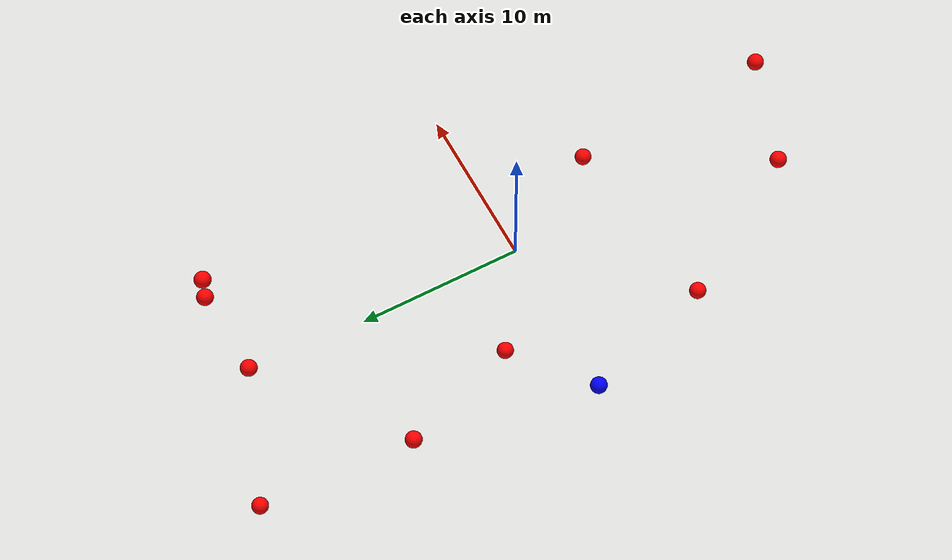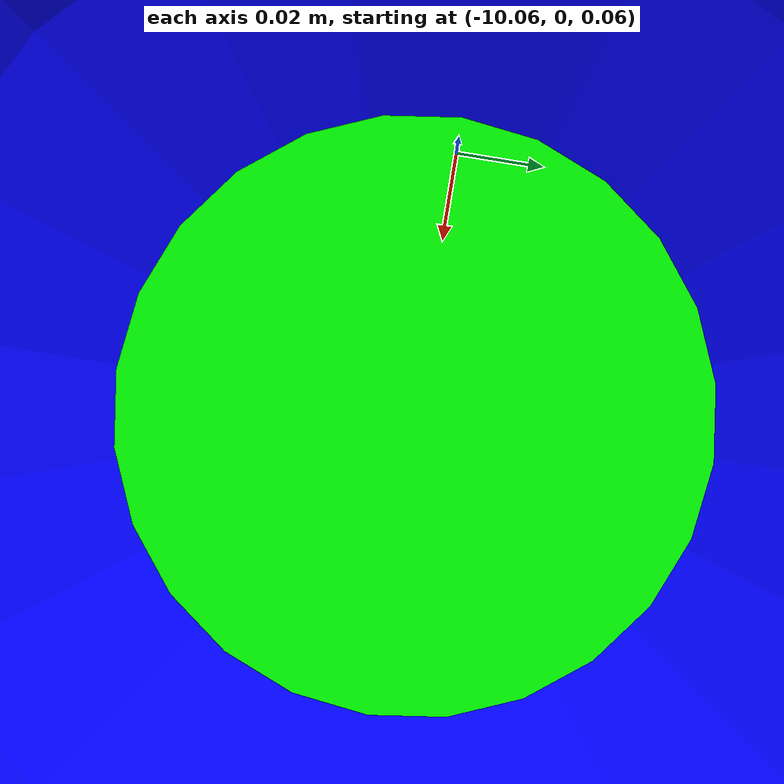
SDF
<?xml version="1.0" ?>
<sdf version="1.8">
    <world name="3d_world">
        <physics name="1ms" type="ode">
            <max_step_size>0.001</max_step_size>
            <real_time_factor>1.0</real_time_factor>
            <real_time_update_rate>1000.0</real_time_update_rate>
        </physics>
        <gravity>0 0 0</gravity>

        <plugin
            filename="gz-sim-physics-system"
            name="gz::sim::v8::systems::Physics">
        </plugin>
        <plugin
            filename="libignition-gazebo-user-commands-system.so"
            name="ignition::gazebo::systems::UserCommands">
        </plugin>
        <plugin
            filename="gz-sim-scene-broadcaster-system"
            name="gz::sim::systems::SceneBroadcaster">
        </plugin>
        <plugin
            filename="gz-sim-sensors-system"
            name="gz::sim::systems::Sensors">
            <render_engine>ogre2</render_engine>
        </plugin>

        <light type="directional" name="sun">
            <cast_shadows>true</cast_shadows>
            <pose>0 0 10 0 0 0</pose>
            <diffuse>0.8 0.8 0.8 1</diffuse>
            <specular>0.2 0.2 0.2 1</specular>
            <attenuation>
                <range>1000</range>
                <constant>0.9</constant>
                <linear>0.01</linear>
                <quadratic>0.001</quadratic>
            </attenuation>
            <direction>-0.5 0.1 -0.9</direction>
        </light>

        <!-- AGENTE -->
        <model name='agente' canonical_link='chassis'>
            <pose relative_to='world'>-10.0 0 0.0 0 0 0</pose>
            <link name='chassis'>
                <pose relative_to='__model__'>0.0 0 0.0 0 0 0</pose>
                <inertial>
                    <mass>1.14395</mass>
                    <inertia>
                        <ixx>0.095329</ixx>
                        <ixy>0</ixy>
                        <ixz>0</ixz>
                        <iyy>0.381317</iyy>
                        <iyz>0</iyz>
                        <izz>0.476646</izz>
                    </inertia>
                </inertial>
                <visual name='visual'>
                    <geometry>
                        <sphere>
                            <radius>0.5</radius>
                        </sphere>
                    </geometry>
                    <material>
                        <ambient>0.0 0.0 1.0 1</ambient>
                        <diffuse>0.0 0.0 1.0 1</diffuse>
                        <specular>0.0 0.0 1.0 1</specular>
                    </material>
                </visual>
                <collision name='collision'>
                    <geometry>
                        <sphere>
                            <radius>0.5</radius>
                        </sphere>
                    </geometry>
                </collision>
                <enable_gravity>false</enable_gravity>
            </link>

            <link name='lidar_link'>
                <pose relative_to='chassis'>0.0 0 0.1 0 0 0</pose>
                <inertial>
                    <mass>0.1</mass>
                    <inertia>
                        <ixx>0.000166667</ixx>
                        <iyy>0.000166667</iyy>
                        <izz>0.000166667</izz>
                    </inertia>
                </inertial>
                <collision name='collision'>
                    <geometry>
                        <cylinder>
                            <radius>0.05</radius>
                            <length>0.1</length>
                        </cylinder>
                    </geometry>
                </collision>
                <visual name='visual'>
                    <geometry>
                        <cylinder>
                            <radius>0.05</radius>
                            <length>0.1</length>
                        </cylinder>
                    </geometry>
                    <material>
                        <ambient>0.0 1.0 0.0 1</ambient>
                        <diffuse>0.0 1.0 0.0 1</diffuse>
                        <specular>0.0 1.0 0.0 1</specular>
                    </material>
                </visual>
                <sensor name="lidar" type="gpu_lidar">
                    <topic>scan</topic>
                    <update_rate>10</update_rate>
                    <lidar>
                        <scan>
                            <horizontal>
                                <samples>5000</samples>
                                <resolution>1</resolution>
                                <min_angle>-3.14159</min_angle>
                                <max_angle>3.14159</max_angle>
                            </horizontal>
                        </scan>
                        <range>
                            <min>0.1</min>
                            <max>10.0</max>
                            <resolution>0.01</resolution>
                        </range>
                    </lidar>
                    <visualize>true</visualize>
                    <always_on>true</always_on>
                    <update_rate>10</update_rate>
                    <pose_frame>lidar</pose_frame>
                </sensor>
                <enable_gravity>false</enable_gravity>
            </link>

            <joint name="lidar_joint" type="fixed">
                <parent>chassis</parent>
                <child>lidar_link</child>
            </joint>

            <plugin
                filename="ignition-gazebo-joint-state-publisher-system"
                name="ignition::gazebo::systems::JointStatePublisher">
            </plugin>
            <plugin
                filename="ignition-gazebo-odometry-publisher-system"
                name="ignition::gazebo::systems::OdometryPublisher">
                <dimensions>3</dimensions>
            </plugin>
            <plugin
                filename="ignition-gazebo-velocity-control-system"
                name="ignition::gazebo::systems::VelocityControl">
                <initial_linear>0.0 0 0</initial_linear>
                <initial_angular>0 0 0.0</initial_angular>
            </plugin>
            <plugin
                filename="libignition-gazebo-pose-publisher-system.so"
                name="ignition::gazebo::systems::PosePublisher">
                <topic>/agente/pose</topic>
                <frame_id>agente</frame_id>
                <update_rate>30</update_rate>
            </plugin>
        </model>

        <!-- OBSTACLE 1 -->
        <model name='obstacle_1' canonical_link='obstacle'>
            <static>false</static>
            <pose relative_to='world'>-6.69 -8.58 -1.42 0 0 0</pose>
            <link name='obstacle'>
                <pose relative_to='__model__'>0.0 0 0.0 0 0 0</pose>
                <visual name='visual'>
                    <geometry>
                        <sphere>
                            <radius>0.50</radius>
                        </sphere>
                    </geometry>
                    <material>
                        <ambient>1.0 0.0 0.0 1</ambient>
                        <diffuse>1.0 0.0 0.0 1</diffuse>
                        <specular>1.0 0.0 0.0 1</specular>
                    </material>
                </visual>
                <collision name='collision'>
                    <geometry>
                        <sphere>
                            <radius>0.50</radius>
                        </sphere>
                    </geometry>
                </collision>
                <enable_gravity>false</enable_gravity>
            </link>

            <plugin
                filename="ignition-gazebo-velocity-control-system"
                name="ignition::gazebo::systems::VelocityControl">
                <initial_linear>1.60 1.18 0.20</initial_linear>
                <initial_angular>0 0 0</initial_angular>
            </plugin>

            <plugin
                filename="ignition-gazebo-odometry-publisher-system"
                name="ignition::gazebo::systems::OdometryPublisher">
                <dimensions>3</dimensions>
            </plugin>
        </model>

        <!-- OBSTACLE 2 -->
        <model name='obstacle_2' canonical_link='obstacle'>
            <static>false</static>
            <pose relative_to='world'>-4.15 2.91 -2.93 0 0 0</pose>
            <link name='obstacle'>
                <pose relative_to='__model__'>0.0 0 0.0 0 0 0</pose>
                <visual name='visual'>
                    <geometry>
                        <sphere>
                            <radius>0.50</radius>
                        </sphere>
                    </geometry>
                    <material>
                        <ambient>1.0 0.0 0.0 1</ambient>
                        <diffuse>1.0 0.0 0.0 1</diffuse>
                        <specular>1.0 0.0 0.0 1</specular>
                    </material>
                </visual>
                <collision name='collision'>
                    <geometry>
                        <sphere>
                            <radius>0.50</radius>
                        </sphere>
                    </geometry>
                </collision>
                <enable_gravity>false</enable_gravity>
            </link>

            <plugin
                filename="ignition-gazebo-velocity-control-system"
                name="ignition::gazebo::systems::VelocityControl">
                <initial_linear>1.33 -0.58 0.58</initial_linear>
                <initial_angular>0 0 0</initial_angular>
            </plugin>

            <plugin
                filename="ignition-gazebo-odometry-publisher-system"
                name="ignition::gazebo::systems::OdometryPublisher">
                <dimensions>3</dimensions>
            </plugin>
        </model>

        <!-- OBSTACLE 3 -->
        <model name='obstacle_3' canonical_link='obstacle'>
            <static>false</static>
            <pose relative_to='world'>-0.50 17.43 1.88 0 0 0</pose>
            <link name='obstacle'>
                <pose relative_to='__model__'>0.0 0 0.0 0 0 0</pose>
                <visual name='visual'>
                    <geometry>
                        <sphere>
                            <radius>0.50</radius>
                        </sphere>
                    </geometry>
                    <material>
                        <ambient>1.0 0.0 0.0 1</ambient>
                        <diffuse>1.0 0.0 0.0 1</diffuse>
                        <specular>1.0 0.0 0.0 1</specular>
                    </material>
                </visual>
                <collision name='collision'>
                    <geometry>
                        <sphere>
                            <radius>0.50</radius>
                        </sphere>
                    </geometry>
                </collision>
                <enable_gravity>false</enable_gravity>
            </link>

            <plugin
                filename="ignition-gazebo-velocity-control-system"
                name="ignition::gazebo::systems::VelocityControl">
                <initial_linear>0.23 -1.98 -0.21</initial_linear>
                <initial_angular>0 0 0</initial_angular>
            </plugin>

            <plugin
                filename="ignition-gazebo-odometry-publisher-system"
                name="ignition::gazebo::systems::OdometryPublisher">
                <dimensions>3</dimensions>
            </plugin>
        </model>

        <!-- OBSTACLE 4 -->
        <model name='obstacle_4' canonical_link='obstacle'>
            <static>false</static>
            <pose relative_to='world'>-8.68 11.18 1.41 0 0 0</pose>
            <link name='obstacle'>
                <pose relative_to='__model__'>0.0 0 0.0 0 0 0</pose>
                <visual name='visual'>
                    <geometry>
                        <sphere>
                            <radius>0.50</radius>
                        </sphere>
                    </geometry>
                    <material>
                        <ambient>1.0 0.0 0.0 1</ambient>
                        <diffuse>1.0 0.0 0.0 1</diffuse>
                        <specular>1.0 0.0 0.0 1</specular>
                    </material>
                </visual>
                <collision name='collision'>
                    <geometry>
                        <sphere>
                            <radius>0.50</radius>
                        </sphere>
                    </geometry>
                </collision>
                <enable_gravity>false</enable_gravity>
            </link>

            <plugin
                filename="ignition-gazebo-velocity-control-system"
                name="ignition::gazebo::systems::VelocityControl">
                <initial_linear>1.53 -1.28 -0.16</initial_linear>
                <initial_angular>0 0 0</initial_angular>
            </plugin>

            <plugin
                filename="ignition-gazebo-odometry-publisher-system"
                name="ignition::gazebo::systems::OdometryPublisher">
                <dimensions>3</dimensions>
            </plugin>
        </model>

        <!-- OBSTACLE 5 -->
        <model name='obstacle_5' canonical_link='obstacle'>
            <static>false</static>
            <pose relative_to='world'>4.22 17.83 2.95 0 0 0</pose>
            <link name='obstacle'>
                <pose relative_to='__model__'>0.0 0 0.0 0 0 0</pose>
                <visual name='visual'>
                    <geometry>
                        <sphere>
                            <radius>0.50</radius>
                        </sphere>
                    </geometry>
                    <material>
                        <ambient>1.0 0.0 0.0 1</ambient>
                        <diffuse>1.0 0.0 0.0 1</diffuse>
                        <specular>1.0 0.0 0.0 1</specular>
                    </material>
                </visual>
                <collision name='collision'>
                    <geometry>
                        <sphere>
                            <radius>0.50</radius>
                        </sphere>
                    </geometry>
                </collision>
                <enable_gravity>false</enable_gravity>
            </link>

            <plugin
                filename="ignition-gazebo-velocity-control-system"
                name="ignition::gazebo::systems::VelocityControl">
                <initial_linear>-0.48 -1.91 -0.32</initial_linear>
                <initial_angular>0 0 0</initial_angular>
            </plugin>

            <plugin
                filename="ignition-gazebo-odometry-publisher-system"
                name="ignition::gazebo::systems::OdometryPublisher">
                <dimensions>3</dimensions>
            </plugin>
        </model>

        <!-- OBSTACLE 6 -->
        <model name='obstacle_6' canonical_link='obstacle'>
            <static>false</static>
            <pose relative_to='world'>4.37 -7.00 -1.01 0 0 0</pose>
            <link name='obstacle'>
                <pose relative_to='__model__'>0.0 0 0.0 0 0 0</pose>
                <visual name='visual'>
                    <geometry>
                        <sphere>
                            <radius>0.50</radius>
                        </sphere>
                    </geometry>
                    <material>
                        <ambient>1.0 0.0 0.0 1</ambient>
                        <diffuse>1.0 0.0 0.0 1</diffuse>
                        <specular>1.0 0.0 0.0 1</specular>
                    </material>
                </visual>
                <collision name='collision'>
                    <geometry>
                        <sphere>
                            <radius>0.50</radius>
                        </sphere>
                    </geometry>
                </collision>
                <enable_gravity>false</enable_gravity>
            </link>

            <plugin
                filename="ignition-gazebo-velocity-control-system"
                name="ignition::gazebo::systems::VelocityControl">
                <initial_linear>-1.50 1.31 0.19</initial_linear>
                <initial_angular>0 0 0</initial_angular>
            </plugin>

            <plugin
                filename="ignition-gazebo-odometry-publisher-system"
                name="ignition::gazebo::systems::OdometryPublisher">
                <dimensions>3</dimensions>
            </plugin>
        </model>

        <!-- OBSTACLE 7 -->
        <model name='obstacle_7' canonical_link='obstacle'>
            <static>false</static>
            <pose relative_to='world'>4.22 17.77 4.94 0 0 0</pose>
            <link name='obstacle'>
                <pose relative_to='__model__'>0.0 0 0.0 0 0 0</pose>
                <visual name='visual'>
                    <geometry>
                        <sphere>
                            <radius>0.50</radius>
                        </sphere>
                    </geometry>
                    <material>
                        <ambient>1.0 0.0 0.0 1</ambient>
                        <diffuse>1.0 0.0 0.0 1</diffuse>
                        <specular>1.0 0.0 0.0 1</specular>
                    </material>
                </visual>
                <collision name='collision'>
                    <geometry>
                        <sphere>
                            <radius>0.50</radius>
                        </sphere>
                    </geometry>
                </collision>
                <enable_gravity>false</enable_gravity>
            </link>

            <plugin
                filename="ignition-gazebo-velocity-control-system"
                name="ignition::gazebo::systems::VelocityControl">
                <initial_linear>0.02 -1.93 -0.54</initial_linear>
                <initial_angular>0 0 0</initial_angular>
            </plugin>

            <plugin
                filename="ignition-gazebo-odometry-publisher-system"
                name="ignition::gazebo::systems::OdometryPublisher">
                <dimensions>3</dimensions>
            </plugin>
        </model>

        <!-- OBSTACLE 8 -->
        <model name='obstacle_8' canonical_link='obstacle'>
            <static>false</static>
            <pose relative_to='world'>-3.58 -15.45 3.55 0 0 0</pose>
            <link name='obstacle'>
                <pose relative_to='__model__'>0.0 0 0.0 0 0 0</pose>
                <visual name='visual'>
                    <geometry>
                        <sphere>
                            <radius>0.50</radius>
                        </sphere>
                    </geometry>
                    <material>
                        <ambient>1.0 0.0 0.0 1</ambient>
                        <diffuse>1.0 0.0 0.0 1</diffuse>
                        <specular>1.0 0.0 0.0 1</specular>
                    </material>
                </visual>
                <collision name='collision'>
                    <geometry>
                        <sphere>
                            <radius>0.50</radius>
                        </sphere>
                    </geometry>
                </collision>
                <enable_gravity>false</enable_gravity>
            </link>

            <plugin
                filename="ignition-gazebo-velocity-control-system"
                name="ignition::gazebo::systems::VelocityControl">
                <initial_linear>0.10 1.95 -0.45</initial_linear>
                <initial_angular>0 0 0</initial_angular>
            </plugin>

            <plugin
                filename="ignition-gazebo-odometry-publisher-system"
                name="ignition::gazebo::systems::OdometryPublisher">
                <dimensions>3</dimensions>
            </plugin>
        </model>

        <!-- OBSTACLE 9 -->
        <model name='obstacle_9' canonical_link='obstacle'>
            <static>false</static>
            <pose relative_to='world'>-6.35 19.94 -2.93 0 0 0</pose>
            <link name='obstacle'>
                <pose relative_to='__model__'>0.0 0 0.0 0 0 0</pose>
                <visual name='visual'>
                    <geometry>
                        <sphere>
                            <radius>0.50</radius>
                        </sphere>
                    </geometry>
                    <material>
                        <ambient>1.0 0.0 0.0 1</ambient>
                        <diffuse>1.0 0.0 0.0 1</diffuse>
                        <specular>1.0 0.0 0.0 1</specular>
                    </material>
                </visual>
                <collision name='collision'>
                    <geometry>
                        <sphere>
                            <radius>0.50</radius>
                        </sphere>
                    </geometry>
                </collision>
                <enable_gravity>false</enable_gravity>
            </link>

            <plugin
                filename="ignition-gazebo-velocity-control-system"
                name="ignition::gazebo::systems::VelocityControl">
                <initial_linear>0.97 -1.73 0.25</initial_linear>
                <initial_angular>0 0 0</initial_angular>
            </plugin>

            <plugin
                filename="ignition-gazebo-odometry-publisher-system"
                name="ignition::gazebo::systems::OdometryPublisher">
                <dimensions>3</dimensions>
            </plugin>
        </model>

        <!-- OBSTACLE 10 -->
        <model name='obstacle_10' canonical_link='obstacle'>
            <static>false</static>
            <pose relative_to='world'>3.33 -18.12 2.76 0 0 0</pose>
            <link name='obstacle'>
                <pose relative_to='__model__'>0.0 0 0.0 0 0 0</pose>
                <visual name='visual'>
                    <geometry>
                        <sphere>
                            <radius>0.50</radius>
                        </sphere>
                    </geometry>
                    <material>
                        <ambient>1.0 0.0 0.0 1</ambient>
                        <diffuse>1.0 0.0 0.0 1</diffuse>
                        <specular>1.0 0.0 0.0 1</specular>
                    </material>
                </visual>
                <collision name='collision'>
                    <geometry>
                        <sphere>
                            <radius>0.50</radius>
                        </sphere>
                    </geometry>
                </collision>
                <enable_gravity>false</enable_gravity>
            </link>

            <plugin
                filename="ignition-gazebo-velocity-control-system"
                name="ignition::gazebo::systems::VelocityControl">
                <initial_linear>0.24 1.96 -0.30</initial_linear>
                <initial_angular>0 0 0</initial_angular>
            </plugin>

            <plugin
                filename="ignition-gazebo-odometry-publisher-system"
                name="ignition::gazebo::systems::OdometryPublisher">
                <dimensions>3</dimensions>
            </plugin>
        </model>

    </world>
</sdf>
